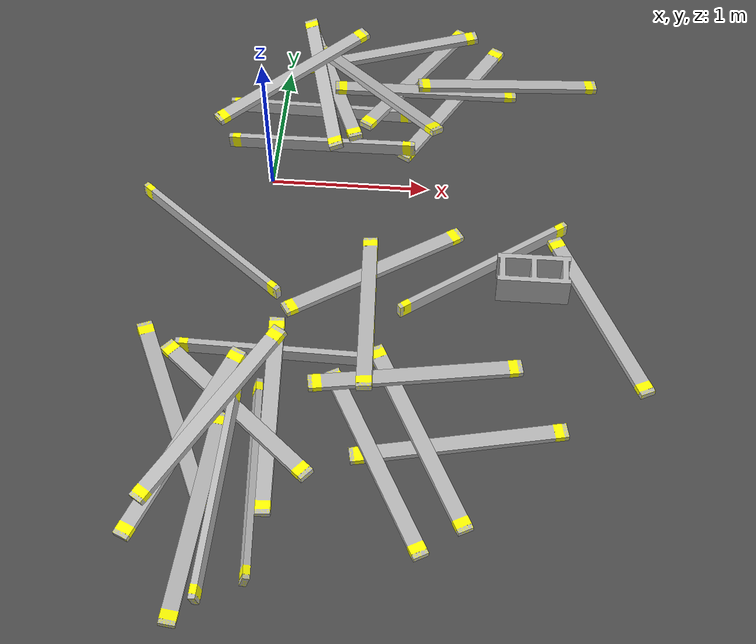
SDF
<sdf version="1.6">
 <world name="default">
  <model name="ground_plane">
   <static>1</static>
   <link name="link">
    <collision name="collision">
     <geometry><plane><normal>0 0 1</normal><size>100 100</size></plane></geometry>
     <surface><friction><ode><mu>100</mu><mu2>50</mu2></ode></friction></surface>
    </collision>
    <visual name="visual">
     <cast_shadows>0</cast_shadows>
     <geometry><plane><normal>0 0 1</normal><size>100 100</size></plane></geometry>
     <material>
      <script><uri>file://media/materials/scripts/gazebo.material</uri><name>Gazebo/Grey</name></script>
     </material>
    </visual>
   </link>
  </model>
  <model name="asphalt_plane">
   <static>1</static>
   <link name="link">
    <collision name="collision"><geometry><box><size>20 20 0.1</size></box></geometry></collision>
    <visual name="visual">
     <cast_shadows>0</cast_shadows>
     <geometry><box><size>20 20 0.1</size></box></geometry>
     <material>
      <script>
       <uri>model://asphalt_plane/materials/scripts</uri>
       <uri>model://asphalt_plane/materials/textures</uri>
       <name>vrc/asphalt</name>
      </script>
     </material>
    </visual>
   </link>
   <pose>0.013797 -0.037077 0 0 -0 0</pose>
  </model>
  <model name="lumber_2x4x48">
   <link name="link">
    <inertial>
     <mass>1.4111</mass>
     <inertia><ixx>0.0011</ixx><ixy>0</ixy><ixz>0</ixz><iyy>0.1771</iyy><iyz>0</iyz><izz>0.1763</izz></inertia>
    </inertial>
    <collision name="collision">
     <geometry><box><size>1.2192 0.038 0.0888</size></box></geometry>
     <surface>
      <bounce><restitution_coefficient>0.01</restitution_coefficient><threshold>5</threshold></bounce>
      <friction><ode><mu>5</mu><mu2>5</mu2></ode></friction>
      <contact>
       <ode>
        <soft_cfm>0.001</soft_cfm>
        <kp>10000</kp>
        <kd>1000</kd>
        <max_vel>0.01</max_vel>
        <min_depth>0.001</min_depth>
       </ode>
      </contact>
     </surface>
    </collision>
    <visual name="visual">
     <geometry><mesh><uri>model://drc_practice_2x4/meshes/2x4x48.dae</uri><scale>1 1 1</scale></mesh></geometry>
    </visual>
   </link>
   <pose>0.295808 0.248092 0.112008 0.001845 -0.031467 -0.025889</pose>
  </model>
  <model name="lumber_2x4x48_clone_1">
   <link name="link">
    <inertial>
     <mass>1.4111</mass>
     <inertia><ixx>0.0011</ixx><ixy>0</ixy><ixz>0</ixz><iyy>0.1771</iyy><iyz>0</iyz><izz>0.1763</izz></inertia>
    </inertial>
    <collision name="collision">
     <geometry><box><size>1.2192 0.038 0.0888</size></box></geometry>
     <surface>
      <bounce><restitution_coefficient>0.01</restitution_coefficient><threshold>5</threshold></bounce>
      <friction><ode><mu>5</mu><mu2>5</mu2></ode></friction>
      <contact>
       <ode>
        <soft_cfm>0.001</soft_cfm>
        <kp>10000</kp>
        <kd>1000</kd>
        <max_vel>0.01</max_vel>
        <min_depth>0.001</min_depth>
       </ode>
      </contact>
     </surface>
    </collision>
    <visual name="visual">
     <geometry><mesh><uri>model://drc_practice_2x4/meshes/2x4x48.dae</uri><scale>1 1 1</scale></mesh></geometry>
    </visual>
   </link>
   <pose>0.260045 0.582681 0.088609 -0.085034 0.000438 -0.022643</pose>
  </model>
  <model name="lumber_2x4x48_clone_3_clone_0">
   <link name="link">
    <inertial>
     <mass>1.4111</mass>
     <inertia><ixx>0.0011</ixx><ixy>0</ixy><ixz>0</ixz><iyy>0.1771</iyy><iyz>0</iyz><izz>0.1763</izz></inertia>
    </inertial>
    <collision name="collision">
     <geometry><box><size>1.2192 0.038 0.0888</size></box></geometry>
     <surface>
      <bounce><restitution_coefficient>0.01</restitution_coefficient><threshold>5</threshold></bounce>
      <friction><ode><mu>5</mu><mu2>5</mu2></ode></friction>
      <contact>
       <ode>
        <soft_cfm>0.001</soft_cfm>
        <kp>10000</kp>
        <kd>1000</kd>
        <max_vel>0.01</max_vel>
        <min_depth>0.001</min_depth>
       </ode>
      </contact>
     </surface>
    </collision>
    <visual name="visual">
     <geometry><mesh><uri>model://drc_practice_2x4/meshes/2x4x48.dae</uri><scale>1 1 1</scale></mesh></geometry>
    </visual>
   </link>
   <pose>0.052465 0.772468 0.212317 1.53337 -0.090895 0.715596</pose>
  </model>
  <model name="lumber_2x4x48_clone_3_clone_0_clone_0_clone_0">
   <link name="link">
    <inertial>
     <mass>1.4111</mass>
     <inertia><ixx>0.0011</ixx><ixy>0</ixy><ixz>0</ixz><iyy>0.1771</iyy><iyz>0</iyz><izz>0.1763</izz></inertia>
    </inertial>
    <collision name="collision">
     <geometry><box><size>1.2192 0.038 0.0888</size></box></geometry>
     <surface>
      <bounce><restitution_coefficient>0.01</restitution_coefficient><threshold>5</threshold></bounce>
      <friction><ode><mu>5</mu><mu2>5</mu2></ode></friction>
      <contact>
       <ode>
        <soft_cfm>0.001</soft_cfm>
        <kp>10000</kp>
        <kd>1000</kd>
        <max_vel>0.01</max_vel>
        <min_depth>0.001</min_depth>
       </ode>
      </contact>
     </surface>
    </collision>
    <visual name="visual">
     <geometry><mesh><uri>model://drc_practice_2x4/meshes/2x4x48.dae</uri><scale>1 1 1</scale></mesh></geometry>
    </visual>
   </link>
   <pose>0.026145 -1.83286 0.153385 1.53811 0.032401 2.41172</pose>
  </model>
  <model name="lumber_2x4x48_clone_0_clone_0">
   <link name="link">
    <inertial>
     <mass>1.4111</mass>
     <inertia><ixx>0.0011</ixx><ixy>0</ixy><ixz>0</ixz><iyy>0.1771</iyy><iyz>0</iyz><izz>0.1763</izz></inertia>
    </inertial>
    <collision name="collision">
     <geometry><box><size>1.2192 0.038 0.0888</size></box></geometry>
     <surface>
      <bounce><restitution_coefficient>0.01</restitution_coefficient><threshold>5</threshold></bounce>
      <friction><ode><mu>5</mu><mu2>5</mu2></ode></friction>
      <contact>
       <ode>
        <soft_cfm>0.001</soft_cfm>
        <kp>10000</kp>
        <kd>1000</kd>
        <max_vel>0.01</max_vel>
        <min_depth>0.001</min_depth>
       </ode>
      </contact>
     </surface>
    </collision>
    <visual name="visual">
     <geometry><mesh><uri>model://drc_practice_2x4/meshes/2x4x48.dae</uri><scale>1 1 1</scale></mesh></geometry>
    </visual>
   </link>
   <pose>0.224612 -1.4017 0.09229 0.001289 0.001106 -0.02268</pose>
  </model>
  <model name="lumber_2x4x48_clone_3_clone_0_clone_1_clone_clone">
   <link name="link">
    <inertial>
     <mass>1.4111</mass>
     <inertia><ixx>0.0011</ixx><ixy>0</ixy><ixz>0</ixz><iyy>0.1771</iyy><iyz>0</iyz><izz>0.1763</izz></inertia>
    </inertial>
    <collision name="collision">
     <geometry><box><size>1.2192 0.038 0.0888</size></box></geometry>
     <surface>
      <bounce><restitution_coefficient>0.01</restitution_coefficient><threshold>5</threshold></bounce>
      <friction><ode><mu>5</mu><mu2>5</mu2></ode></friction>
      <contact>
       <ode>
        <soft_cfm>0.001</soft_cfm>
        <kp>10000</kp>
        <kd>1000</kd>
        <max_vel>0.01</max_vel>
        <min_depth>0.001</min_depth>
       </ode>
      </contact>
     </surface>
    </collision>
    <visual name="visual">
     <geometry><mesh><uri>model://drc_practice_2x4/meshes/2x4x48.dae</uri><scale>1 1 1</scale></mesh></geometry>
    </visual>
   </link>
   <pose>0.005661 -2.34814 0.162238 -0.131373 -0.111052 1.52374</pose>
  </model>
  <model name="lumber_2x4x48_clone_3_clone_0_clone_clone_0">
   <link name="link">
    <inertial>
     <mass>1.4111</mass>
     <inertia><ixx>0.0011</ixx><ixy>0</ixy><ixz>0</ixz><iyy>0.1771</iyy><iyz>0</iyz><izz>0.1763</izz></inertia>
    </inertial>
    <collision name="collision">
     <geometry><box><size>1.2192 0.038 0.0888</size></box></geometry>
     <surface>
      <bounce><restitution_coefficient>0.01</restitution_coefficient><threshold>5</threshold></bounce>
      <friction><ode><mu>5</mu><mu2>5</mu2></ode></friction>
      <contact>
       <ode>
        <soft_cfm>0.001</soft_cfm>
        <kp>10000</kp>
        <kd>1000</kd>
        <max_vel>0.01</max_vel>
        <min_depth>0.001</min_depth>
       </ode>
      </contact>
     </surface>
    </collision>
    <visual name="visual">
     <geometry><mesh><uri>model://drc_practice_2x4/meshes/2x4x48.dae</uri><scale>1 1 1</scale></mesh></geometry>
    </visual>
   </link>
   <pose>1.38165 -0.697669 0.093055 3.14159 0 0.626237</pose>
  </model>
  <model name="lumber_2x4x48_clone_3_clone_0_clone_1_clone_0">
   <link name="link">
    <inertial>
     <mass>1.4111</mass>
     <inertia><ixx>0.0011</ixx><ixy>0</ixy><ixz>0</ixz><iyy>0.1771</iyy><iyz>0</iyz><izz>0.1763</izz></inertia>
    </inertial>
    <collision name="collision">
     <geometry><box><size>1.2192 0.038 0.0888</size></box></geometry>
     <surface>
      <bounce><restitution_coefficient>0.01</restitution_coefficient><threshold>5</threshold></bounce>
      <friction><ode><mu>5</mu><mu2>5</mu2></ode></friction>
      <contact>
       <ode>
        <soft_cfm>0.001</soft_cfm>
        <kp>10000</kp>
        <kd>1000</kd>
        <max_vel>0.01</max_vel>
        <min_depth>0.001</min_depth>
       </ode>
      </contact>
     </surface>
    </collision>
    <visual name="visual">
     <geometry><mesh><uri>model://drc_practice_2x4/meshes/2x4x48.dae</uri><scale>1 1 1</scale></mesh></geometry>
    </visual>
   </link>
   <pose>0.257048 0.749768 0.18857 1.33624 -0.008162 1.81131</pose>
  </model>
  <model name="lumber_2x4x48_clone_3_clone_0_clone_1_clone_1">
   <link name="link">
    <inertial>
     <mass>1.4111</mass>
     <inertia><ixx>0.0011</ixx><ixy>0</ixy><ixz>0</ixz><iyy>0.1771</iyy><iyz>0</iyz><izz>0.1763</izz></inertia>
    </inertial>
    <collision name="collision">
     <geometry><box><size>1.2192 0.038 0.0888</size></box></geometry>
     <surface>
      <bounce><restitution_coefficient>0.01</restitution_coefficient><threshold>5</threshold></bounce>
      <friction><ode><mu>5</mu><mu2>5</mu2></ode></friction>
      <contact>
       <ode>
        <soft_cfm>0.001</soft_cfm>
        <kp>10000</kp>
        <kd>1000</kd>
        <max_vel>0.01</max_vel>
        <min_depth>0.001</min_depth>
       </ode>
      </contact>
     </surface>
    </collision>
    <visual name="visual">
     <geometry><mesh><uri>model://drc_practice_2x4/meshes/2x4x48.dae</uri><scale>1 1 1</scale></mesh></geometry>
    </visual>
   </link>
   <pose>-0.091835 -2.47497 0.109513 -1.70391 0.05927 -1.65204</pose>
  </model>
  <model name="lumber_2x4x48_clone_3_clone_0_clone_1_clone_2">
   <link name="link">
    <inertial>
     <mass>1.4111</mass>
     <inertia><ixx>0.0011</ixx><ixy>0</ixy><ixz>0</ixz><iyy>0.1771</iyy><iyz>0</iyz><izz>0.1763</izz></inertia>
    </inertial>
    <collision name="collision">
     <geometry><box><size>1.2192 0.038 0.0888</size></box></geometry>
     <surface>
      <bounce><restitution_coefficient>0.01</restitution_coefficient><threshold>5</threshold></bounce>
      <friction><ode><mu>5</mu><mu2>5</mu2></ode></friction>
      <contact>
       <ode>
        <soft_cfm>0.001</soft_cfm>
        <kp>10000</kp>
        <kd>1000</kd>
        <max_vel>0.01</max_vel>
        <min_depth>0.001</min_depth>
       </ode>
      </contact>
     </surface>
    </collision>
    <visual name="visual">
     <geometry><mesh><uri>model://drc_practice_2x4/meshes/2x4x48.dae</uri><scale>1 1 1</scale></mesh></geometry>
    </visual>
   </link>
   <pose>0.22247 -1.8259 0.119162 -1.5659 0.084542 -1.52032</pose>
  </model>
  <model name="lumber_2x4x48_clone_3_clone_0_clone_clone_0_clone_0_clone">
   <link name="link">
    <inertial>
     <mass>1.4111</mass>
     <inertia><ixx>0.0011</ixx><ixy>0</ixy><ixz>0</ixz><iyy>0.1771</iyy><iyz>0</iyz><izz>0.1763</izz></inertia>
    </inertial>
    <collision name="collision">
     <geometry><box><size>1.2192 0.038 0.0888</size></box></geometry>
     <surface>
      <bounce><restitution_coefficient>0.01</restitution_coefficient><threshold>5</threshold></bounce>
      <friction><ode><mu>5</mu><mu2>5</mu2></ode></friction>
      <contact>
       <ode>
        <soft_cfm>0.001</soft_cfm>
        <kp>10000</kp>
        <kd>1000</kd>
        <max_vel>0.01</max_vel>
        <min_depth>0.001</min_depth>
       </ode>
      </contact>
     </surface>
    </collision>
    <visual name="visual">
     <geometry><mesh><uri>model://drc_practice_2x4/meshes/2x4x48.dae</uri><scale>1 1 1</scale></mesh></geometry>
    </visual>
   </link>
   <pose>0.627245 0.678739 0.216849 -1.76817 -0.113845 -0.796282</pose>
  </model>
  <model name="lumber_2x4x48_clone_3_clone_0_clone_clone_0_clone_0_clone_4">
   <link name="link">
    <inertial>
     <mass>1.4111</mass>
     <inertia><ixx>0.0011</ixx><ixy>0</ixy><ixz>0</ixz><iyy>0.1771</iyy><iyz>0</iyz><izz>0.1763</izz></inertia>
    </inertial>
    <collision name="collision">
     <geometry><box><size>1.2192 0.038 0.0888</size></box></geometry>
     <surface>
      <bounce><restitution_coefficient>0.01</restitution_coefficient><threshold>5</threshold></bounce>
      <friction><ode><mu>5</mu><mu2>5</mu2></ode></friction>
      <contact>
       <ode>
        <soft_cfm>0.001</soft_cfm>
        <kp>10000</kp>
        <kd>1000</kd>
        <max_vel>0.01</max_vel>
        <min_depth>0.001</min_depth>
       </ode>
      </contact>
     </surface>
    </collision>
    <visual name="visual">
     <geometry><mesh><uri>model://drc_practice_2x4/meshes/2x4x48.dae</uri><scale>1 1 1</scale></mesh></geometry>
    </visual>
   </link>
   <pose>1.05451 -1.91415 0.112177 -1.57149 0.073383 -1.08552</pose>
  </model>
  <model name="lumber_2x4x48_clone_3_clone_0_clone_clone_0_clone_0_clone_5">
   <link name="link">
    <inertial>
     <mass>1.4111</mass>
     <inertia><ixx>0.0011</ixx><ixy>0</ixy><ixz>0</ixz><iyy>0.1771</iyy><iyz>0</iyz><izz>0.1763</izz></inertia>
    </inertial>
    <collision name="collision">
     <geometry><box><size>1.2192 0.038 0.0888</size></box></geometry>
     <surface>
      <bounce><restitution_coefficient>0.01</restitution_coefficient><threshold>5</threshold></bounce>
      <friction><ode><mu>5</mu><mu2>5</mu2></ode></friction>
      <contact>
       <ode>
        <soft_cfm>0.001</soft_cfm>
        <kp>10000</kp>
        <kd>1000</kd>
        <max_vel>0.01</max_vel>
        <min_depth>0.001</min_depth>
       </ode>
      </contact>
     </surface>
    </collision>
    <visual name="visual">
     <geometry><mesh><uri>model://drc_practice_2x4/meshes/2x4x48.dae</uri><scale>1 1 1</scale></mesh></geometry>
    </visual>
   </link>
   <pose>2.07159 -0.974587 0.067749 -1.57444 8.2e-05 -1.12244</pose>
  </model>
  <model name="lumber_2x4x48_clone_3_clone_0_clone_clone_0_clone_0_clone_8">
   <link name="link">
    <inertial>
     <mass>1.4111</mass>
     <inertia><ixx>0.0011</ixx><ixy>0</ixy><ixz>0</ixz><iyy>0.1771</iyy><iyz>0</iyz><izz>0.1763</izz></inertia>
    </inertial>
    <collision name="collision">
     <geometry><box><size>1.2192 0.038 0.0888</size></box></geometry>
     <surface>
      <bounce><restitution_coefficient>0.01</restitution_coefficient><threshold>5</threshold></bounce>
      <friction><ode><mu>5</mu><mu2>5</mu2></ode></friction>
      <contact>
       <ode>
        <soft_cfm>0.001</soft_cfm>
        <kp>10000</kp>
        <kd>1000</kd>
        <max_vel>0.01</max_vel>
        <min_depth>0.001</min_depth>
       </ode>
      </contact>
     </surface>
    </collision>
    <visual name="visual">
     <geometry><mesh><uri>model://drc_practice_2x4/meshes/2x4x48.dae</uri><scale>1 1 1</scale></mesh></geometry>
    </visual>
   </link>
   <pose>0.824923 -2.07777 0.101162 1.58706 0.05332 -1.08031</pose>
  </model>
  <model name="lumber_2x4x48_clone_3_clone_0_clone_clone_0_clone_0_clone_0_clone_0">
   <link name="link">
    <inertial>
     <mass>1.4111</mass>
     <inertia><ixx>0.0011</ixx><ixy>0</ixy><ixz>0</ixz><iyy>0.1771</iyy><iyz>0</iyz><izz>0.1763</izz></inertia>
    </inertial>
    <collision name="collision">
     <geometry><box><size>1.2192 0.038 0.0888</size></box></geometry>
     <surface>
      <bounce><restitution_coefficient>0.01</restitution_coefficient><threshold>5</threshold></bounce>
      <friction><ode><mu>5</mu><mu2>5</mu2></ode></friction>
      <contact>
       <ode>
        <soft_cfm>0.001</soft_cfm>
        <kp>10000</kp>
        <kd>1000</kd>
        <max_vel>0.01</max_vel>
        <min_depth>0.001</min_depth>
       </ode>
      </contact>
     </surface>
    </collision>
    <visual name="visual">
     <geometry><mesh><uri>model://drc_practice_2x4/meshes/2x4x48.dae</uri><scale>1 1 1</scale></mesh></geometry>
    </visual>
   </link>
   <pose>-0.310197 -1.89296 0.141695 -1.65213 0.117011 -1.13992</pose>
  </model>
  <model name="lumber_2x4x48_clone_3_clone_0_clone_clone_0_clone_0_clone_10">
   <link name="link">
    <inertial>
     <mass>1.4111</mass>
     <inertia><ixx>0.0011</ixx><ixy>0</ixy><ixz>0</ixz><iyy>0.1771</iyy><iyz>0</iyz><izz>0.1763</izz></inertia>
    </inertial>
    <collision name="collision">
     <geometry><box><size>1.2192 0.038 0.0888</size></box></geometry>
     <surface>
      <bounce><restitution_coefficient>0.01</restitution_coefficient><threshold>5</threshold></bounce>
      <friction><ode><mu>5</mu><mu2>5</mu2></ode></friction>
      <contact>
       <ode>
        <soft_cfm>0.001</soft_cfm>
        <kp>10000</kp>
        <kd>1000</kd>
        <max_vel>0.01</max_vel>
        <min_depth>0.001</min_depth>
       </ode>
      </contact>
     </surface>
    </collision>
    <visual name="visual">
     <geometry><mesh><uri>model://drc_practice_2x4/meshes/2x4x48.dae</uri><scale>1 1 1</scale></mesh></geometry>
    </visual>
   </link>
   <pose>0.313771 0.821958 0.130659 -1.53175 -0.086722 -1.22289</pose>
  </model>
  <model name="lumber_2x4x48_clone_3_clone_0_clone_clone_0_clone_0_clone_11">
   <link name="link">
    <inertial>
     <mass>1.4111</mass>
     <inertia><ixx>0.0011</ixx><ixy>0</ixy><ixz>0</ixz><iyy>0.1771</iyy><iyz>0</iyz><izz>0.1763</izz></inertia>
    </inertial>
    <collision name="collision">
     <geometry><box><size>1.2192 0.038 0.0888</size></box></geometry>
     <surface>
      <bounce><restitution_coefficient>0.01</restitution_coefficient><threshold>5</threshold></bounce>
      <friction><ode><mu>5</mu><mu2>5</mu2></ode></friction>
      <contact>
       <ode>
        <soft_cfm>0.001</soft_cfm>
        <kp>10000</kp>
        <kd>1000</kd>
        <max_vel>0.01</max_vel>
        <min_depth>0.001</min_depth>
       </ode>
      </contact>
     </surface>
    </collision>
    <visual name="visual">
     <geometry><mesh><uri>model://drc_practice_2x4/meshes/2x4x48.dae</uri><scale>1 1 1</scale></mesh></geometry>
    </visual>
   </link>
   <pose>-0.223628 -2.06554 0.161285 1.5508 0.153874 -1.99309</pose>
  </model>
  <model name="lumber_2x4x48_clone_3_clone_0_clone_clone_0_clone_0_clone_11_clone">
   <link name="link">
    <inertial>
     <mass>1.4111</mass>
     <inertia><ixx>0.0011</ixx><ixy>0</ixy><ixz>0</ixz><iyy>0.1771</iyy><iyz>0</iyz><izz>0.1763</izz></inertia>
    </inertial>
    <collision name="collision">
     <geometry><box><size>1.2192 0.038 0.0888</size></box></geometry>
     <surface>
      <bounce><restitution_coefficient>0.01</restitution_coefficient><threshold>5</threshold></bounce>
      <friction><ode><mu>5</mu><mu2>5</mu2></ode></friction>
      <contact>
       <ode>
        <soft_cfm>0.001</soft_cfm>
        <kp>10000</kp>
        <kd>1000</kd>
        <max_vel>0.01</max_vel>
        <min_depth>0.001</min_depth>
       </ode>
      </contact>
     </surface>
    </collision>
    <visual name="visual">
     <geometry><mesh><uri>model://drc_practice_2x4/meshes/2x4x48.dae</uri><scale>1 1 1</scale></mesh></geometry>
    </visual>
   </link>
   <pose>-0.08174 -1.9315 0.251746 1.68351 0.190437 -2.15915</pose>
  </model>
  <model name="lumber_2x4x48_clone_3_clone_0_clone_clone_0_clone_0_clone_11_clone_11">
   <link name="link">
    <inertial>
     <mass>1.4111</mass>
     <inertia><ixx>0.0011</ixx><ixy>0</ixy><ixz>0</ixz><iyy>0.1771</iyy><iyz>0</iyz><izz>0.1763</izz></inertia>
    </inertial>
    <collision name="collision">
     <geometry><box><size>1.2192 0.038 0.0888</size></box></geometry>
     <surface>
      <bounce><restitution_coefficient>0.01</restitution_coefficient><threshold>5</threshold></bounce>
      <friction><ode><mu>5</mu><mu2>5</mu2></ode></friction>
      <contact>
       <ode>
        <soft_cfm>0.001</soft_cfm>
        <kp>10000</kp>
        <kd>1000</kd>
        <max_vel>0.01</max_vel>
        <min_depth>0.001</min_depth>
       </ode>
      </contact>
     </surface>
    </collision>
    <visual name="visual">
     <geometry><mesh><uri>model://drc_practice_2x4/meshes/2x4x48.dae</uri><scale>1 1 1</scale></mesh></geometry>
    </visual>
   </link>
   <pose>0.871339 0.913581 0.11193 1.57992 -0.075437 -2.09459</pose>
  </model>
  <model name="lumber_2x4x48_clone_3_clone_0_clone_clone_0_clone_0_clone_11_clone_12">
   <link name="link">
    <inertial>
     <mass>1.4111</mass>
     <inertia><ixx>0.0011</ixx><ixy>0</ixy><ixz>0</ixz><iyy>0.1771</iyy><iyz>0</iyz><izz>0.1763</izz></inertia>
    </inertial>
    <collision name="collision">
     <geometry><box><size>1.2192 0.038 0.0888</size></box></geometry>
     <surface>
      <bounce><restitution_coefficient>0.01</restitution_coefficient><threshold>5</threshold></bounce>
      <friction><ode><mu>5</mu><mu2>5</mu2></ode></friction>
      <contact>
       <ode>
        <soft_cfm>0.001</soft_cfm>
        <kp>10000</kp>
        <kd>1000</kd>
        <max_vel>0.01</max_vel>
        <min_depth>0.001</min_depth>
       </ode>
      </contact>
     </surface>
    </collision>
    <visual name="visual">
     <geometry><mesh><uri>model://drc_practice_2x4/meshes/2x4x48.dae</uri><scale>1 1 1</scale></mesh></geometry>
    </visual>
   </link>
   <pose>1.13104 0.733816 0.067238 1.57761 0.000641 -2.08471</pose>
  </model>
  <model name="lumber_2x4x48_clone_3_clone_0_clone_clone_0_clone_0_clone_11_clone_13">
   <link name="link">
    <inertial>
     <mass>1.4111</mass>
     <inertia><ixx>0.0011</ixx><ixy>0</ixy><ixz>0</ixz><iyy>0.1771</iyy><iyz>0</iyz><izz>0.1763</izz></inertia>
    </inertial>
    <collision name="collision">
     <geometry><box><size>1.2192 0.038 0.0888</size></box></geometry>
     <surface>
      <bounce><restitution_coefficient>0.01</restitution_coefficient><threshold>5</threshold></bounce>
      <friction><ode><mu>5</mu><mu2>5</mu2></ode></friction>
      <contact>
       <ode>
        <soft_cfm>0.001</soft_cfm>
        <kp>10000</kp>
        <kd>1000</kd>
        <max_vel>0.01</max_vel>
        <min_depth>0.001</min_depth>
       </ode>
      </contact>
     </surface>
    </collision>
    <visual name="visual">
     <geometry><mesh><uri>model://drc_practice_2x4/meshes/2x4x48.dae</uri><scale>1 1 1</scale></mesh></geometry>
    </visual>
   </link>
   <pose>0.717379 -0.748609 0.067471 1.57525 -2.1e-05 -2.56666</pose>
  </model>
  <model name="lumber_2x4x48_clone_3_clone_0_clone_clone_0_clone_0_clone_11_clone_14_clone_clone">
   <link name="link">
    <inertial>
     <mass>1.4111</mass>
     <inertia><ixx>0.0011</ixx><ixy>0</ixy><ixz>0</ixz><iyy>0.1771</iyy><iyz>0</iyz><izz>0.1763</izz></inertia>
    </inertial>
    <collision name="collision">
     <geometry><box><size>1.2192 0.038 0.0888</size></box></geometry>
     <surface>
      <bounce><restitution_coefficient>0.01</restitution_coefficient><threshold>5</threshold></bounce>
      <friction><ode><mu>5</mu><mu2>5</mu2></ode></friction>
      <contact>
       <ode>
        <soft_cfm>0.001</soft_cfm>
        <kp>10000</kp>
        <kd>1000</kd>
        <max_vel>0.01</max_vel>
        <min_depth>0.001</min_depth>
       </ode>
      </contact>
     </surface>
    </collision>
    <visual name="visual">
     <geometry><mesh><uri>model://drc_practice_2x4/meshes/2x4x48.dae</uri><scale>1 1 1</scale></mesh></geometry>
    </visual>
   </link>
   <pose>1.28109 -1.92031 0.067274 1.56167 0.000486 -2.93986</pose>
  </model>
  <model name="lumber_2x4x48_clone_3_clone_0_clone_clone_0_clone_0_clone_11_clone_14_clone_clone_0">
   <link name="link">
    <inertial>
     <mass>1.4111</mass>
     <inertia><ixx>0.0011</ixx><ixy>0</ixy><ixz>0</ixz><iyy>0.1771</iyy><iyz>0</iyz><izz>0.1763</izz></inertia>
    </inertial>
    <collision name="collision">
     <geometry><box><size>1.2192 0.038 0.0888</size></box></geometry>
     <surface>
      <bounce><restitution_coefficient>0.01</restitution_coefficient><threshold>5</threshold></bounce>
      <friction><ode><mu>5</mu><mu2>5</mu2></ode></friction>
      <contact>
       <ode>
        <soft_cfm>0.001</soft_cfm>
        <kp>10000</kp>
        <kd>1000</kd>
        <max_vel>0.01</max_vel>
        <min_depth>0.001</min_depth>
       </ode>
      </contact>
     </surface>
    </collision>
    <visual name="visual">
     <geometry><mesh><uri>model://drc_practice_2x4/meshes/2x4x48.dae</uri><scale>1 1 1</scale></mesh></geometry>
    </visual>
   </link>
   <pose>0.685393 1.16674 0.101494 1.65282 0.054821 -2.87109</pose>
  </model>
  <model name="lumber_2x4x48_clone_3_clone_0_clone_clone_0_clone_0_clone_11_clone_14_clone_clone_1">
   <link name="link">
    <inertial>
     <mass>1.4111</mass>
     <inertia><ixx>0.0011</ixx><ixy>0</ixy><ixz>0</ixz><iyy>0.1771</iyy><iyz>0</iyz><izz>0.1763</izz></inertia>
    </inertial>
    <collision name="collision">
     <geometry><box><size>1.2192 0.038 0.0888</size></box></geometry>
     <surface>
      <bounce><restitution_coefficient>0.01</restitution_coefficient><threshold>5</threshold></bounce>
      <friction><ode><mu>5</mu><mu2>5</mu2></ode></friction>
      <contact>
       <ode>
        <soft_cfm>0.001</soft_cfm>
        <kp>10000</kp>
        <kd>1000</kd>
        <max_vel>0.01</max_vel>
        <min_depth>0.001</min_depth>
       </ode>
      </contact>
     </surface>
    </collision>
    <visual name="visual">
     <geometry><mesh><uri>model://drc_practice_2x4/meshes/2x4x48.dae</uri><scale>1 1 1</scale></mesh></geometry>
    </visual>
   </link>
   <pose>0.948398 0.757759 0.138412 1.60284 -0.086825 -3.04838</pose>
  </model>
  <model name="lumber_2x4x48_clone_3_clone_0_clone_clone_0_clone_0_clone_11_clone_14_clone_clone_6">
   <link name="link">
    <inertial>
     <mass>1.4111</mass>
     <inertia><ixx>0.0011</ixx><ixy>0</ixy><ixz>0</ixz><iyy>0.1771</iyy><iyz>0</iyz><izz>0.1763</izz></inertia>
    </inertial>
    <collision name="collision">
     <geometry><box><size>1.2192 0.038 0.0888</size></box></geometry>
     <surface>
      <bounce><restitution_coefficient>0.01</restitution_coefficient><threshold>5</threshold></bounce>
      <friction><ode><mu>5</mu><mu2>5</mu2></ode></friction>
      <contact>
       <ode>
        <soft_cfm>0.001</soft_cfm>
        <kp>10000</kp>
        <kd>1000</kd>
        <max_vel>0.01</max_vel>
        <min_depth>0.001</min_depth>
       </ode>
      </contact>
     </surface>
    </collision>
    <visual name="visual">
     <geometry><mesh><uri>model://drc_practice_2x4/meshes/2x4x48.dae</uri><scale>1 1 1</scale></mesh></geometry>
    </visual>
   </link>
   <pose>1.01791 -1.55514 0.169369 1.50856 -0.044511 -2.95452</pose>
  </model>
  <model name="lumber_2x4x48_clone_3_clone_0_clone_clone_0_clone_0_clone_11_clone_14_clone_clone_7">
   <link name="link">
    <inertial>
     <mass>1.4111</mass>
     <inertia><ixx>0.0011</ixx><ixy>0</ixy><ixz>0</ixz><iyy>0.1771</iyy><iyz>0</iyz><izz>0.1763</izz></inertia>
    </inertial>
    <collision name="collision">
     <geometry><box><size>1.2192 0.038 0.0888</size></box></geometry>
     <surface>
      <bounce><restitution_coefficient>0.01</restitution_coefficient><threshold>5</threshold></bounce>
      <friction><ode><mu>5</mu><mu2>5</mu2></ode></friction>
      <contact>
       <ode>
        <soft_cfm>0.001</soft_cfm>
        <kp>10000</kp>
        <kd>1000</kd>
        <max_vel>0.01</max_vel>
        <min_depth>0.001</min_depth>
       </ode>
      </contact>
     </surface>
    </collision>
    <visual name="visual">
     <geometry><mesh><uri>model://drc_practice_2x4/meshes/2x4x48.dae</uri><scale>1 1 1</scale></mesh></geometry>
    </visual>
   </link>
   <pose>1.49836 0.86506 0.123979 1.61017 -0.090018 -2.99095</pose>
  </model>
  <model name="lumber_2x4x48_clone_3_clone_0_clone_clone_0_clone_0_clone_0_clone_1">
   <link name="link">
    <inertial>
     <mass>1.4111</mass>
     <inertia><ixx>0.0011</ixx><ixy>0</ixy><ixz>0</ixz><iyy>0.1771</iyy><iyz>0</iyz><izz>0.1763</izz></inertia>
    </inertial>
    <collision name="collision">
     <geometry><box><size>1.2192 0.038 0.0888</size></box></geometry>
     <surface>
      <bounce><restitution_coefficient>0.01</restitution_coefficient><threshold>5</threshold></bounce>
      <friction><ode><mu>5</mu><mu2>5</mu2></ode></friction>
      <contact>
       <ode>
        <soft_cfm>0.001</soft_cfm>
        <kp>10000</kp>
        <kd>1000</kd>
        <max_vel>0.01</max_vel>
        <min_depth>0.001</min_depth>
       </ode>
      </contact>
     </surface>
    </collision>
    <visual name="visual">
     <geometry><mesh><uri>model://drc_practice_2x4/meshes/2x4x48.dae</uri><scale>1 1 1</scale></mesh></geometry>
    </visual>
   </link>
   <pose>0.173619 -2.22464 0.095211 -0.288693 -0.000842 -1.49614</pose>
  </model>
  <model name="lumber_2x4x48_clone_3_clone_0_clone_clone_0_clone_0_clone_0_clone_2">
   <link name="link">
    <inertial>
     <mass>1.4111</mass>
     <inertia><ixx>0.0011</ixx><ixy>0</ixy><ixz>0</ixz><iyy>0.1771</iyy><iyz>0</iyz><izz>0.1763</izz></inertia>
    </inertial>
    <collision name="collision">
     <geometry><box><size>1.2192 0.038 0.0888</size></box></geometry>
     <surface>
      <bounce><restitution_coefficient>0.01</restitution_coefficient><threshold>5</threshold></bounce>
      <friction><ode><mu>5</mu><mu2>5</mu2></ode></friction>
      <contact>
       <ode>
        <soft_cfm>0.001</soft_cfm>
        <kp>10000</kp>
        <kd>1000</kd>
        <max_vel>0.01</max_vel>
        <min_depth>0.001</min_depth>
       </ode>
      </contact>
     </surface>
    </collision>
    <visual name="visual">
     <geometry><mesh><uri>model://drc_practice_2x4/meshes/2x4x48.dae</uri><scale>1 1 1</scale></mesh></geometry>
    </visual>
   </link>
   <pose>0.707918 -1.10852 0.159725 -1.48914 -0.142207 -1.52097</pose>
  </model>
  <model name="lumber_2x4x48_clone_3_clone_0_clone_clone_0_clone_0_clone_11_clone_13_clone">
   <link name="link">
    <inertial>
     <mass>1.4111</mass>
     <inertia><ixx>0.0011</ixx><ixy>0</ixy><ixz>0</ixz><iyy>0.1771</iyy><iyz>0</iyz><izz>0.1763</izz></inertia>
    </inertial>
    <collision name="collision">
     <geometry><box><size>1.2192 0.038 0.0888</size></box></geometry>
     <surface>
      <bounce><restitution_coefficient>0.01</restitution_coefficient><threshold>5</threshold></bounce>
      <friction><ode><mu>5</mu><mu2>5</mu2></ode></friction>
      <contact>
       <ode>
        <soft_cfm>0.001</soft_cfm>
        <kp>10000</kp>
        <kd>1000</kd>
        <max_vel>0.01</max_vel>
        <min_depth>0.001</min_depth>
       </ode>
      </contact>
     </surface>
    </collision>
    <visual name="visual">
     <geometry><mesh><uri>model://drc_practice_2x4/meshes/2x4x48.dae</uri><scale>1 1 1</scale></mesh></geometry>
    </visual>
   </link>
   <pose>-0.30805 -0.588191 0.093055 0 -0 2.4529</pose>
  </model>
  <model name="cinder_block">
   <link name="link">
    <inertial>
     <pose>0 0 0.1016 0 -0 0</pose>
     <mass>5</mass>
     <inertia>
      <ixx>0.028705</ixx>
      <ixy>0</ixy>
      <iyy>0.073708</iyy>
      <ixz>0</ixz>
      <iyz>0</iyz>
      <izz>0.06908</izz>
     </inertia>
    </inertial>
    <visual name="visual">
     <geometry><mesh><uri>model://cinder_block/meshes/cinder_block.dae</uri><scale>1 1 1</scale></mesh></geometry>
    </visual>
    <collision name="left">
     <pose>0 -0.08465 0.1016 0 -0 0</pose>
     <geometry><box><size>0.43495 0.0339 0.2032</size></box></geometry>
     <surface>
      <contact><ode><max_vel>0.1</max_vel><min_depth>0.001</min_depth></ode></contact>
      <friction><ode><mu>1</mu><mu2>1</mu2></ode></friction>
     </surface>
    </collision>
    <collision name="right">
     <pose>0 0.08465 0.1016 0 -0 0</pose>
     <geometry><box><size>0.43495 0.0339 0.2032</size></box></geometry>
     <surface>
      <contact><ode><max_vel>0.1</max_vel><min_depth>0.001</min_depth></ode></contact>
      <friction><ode><mu>1</mu><mu2>1</mu2></ode></friction>
     </surface>
    </collision>
    <collision name="front">
     <pose>0.18625 0 0.1016 0 -0 0</pose>
     <geometry><box><size>0.0339 0.1354 0.203</size></box></geometry>
     <surface>
      <contact><ode><max_vel>0.1</max_vel><min_depth>0.001</min_depth></ode></contact>
      <friction><ode><mu>1</mu><mu2>1</mu2></ode></friction>
     </surface>
    </collision>
    <collision name="middle">
     <pose>0 0 0.1016 0 -0 0</pose>
     <geometry><box><size>0.0339 0.1354 0.203</size></box></geometry>
     <surface>
      <contact><ode><max_vel>0.1</max_vel><min_depth>0.001</min_depth></ode></contact>
      <friction><ode><mu>1</mu><mu2>1</mu2></ode></friction>
     </surface>
    </collision>
    <collision name="back">
     <pose>-0.18625 0 0.1016 0 -0 0</pose>
     <geometry><box><size>0.0339 0.1354 0.203</size></box></geometry>
     <surface>
      <contact><ode><max_vel>0.1</max_vel><min_depth>0.001</min_depth></ode></contact>
      <friction><ode><mu>1</mu><mu2>1</mu2></ode></friction>
     </surface>
    </collision>
   </link>
   <pose>1.67327 -0.799635 0.049464 -0.001235 0.00151 0.000908</pose>
  </model>
 </world>
</sdf>
